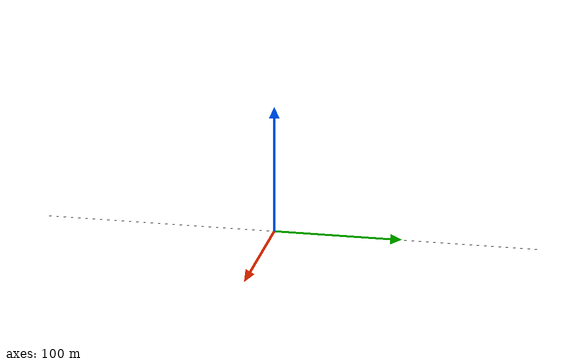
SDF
<?xml version='1.0'?>
<sdf version='1.7'>
  <model name='y_balk'>
    <link name='y_balk::unit_box::link'>
      <inertial>
        <mass>1</mass>
        <inertia>
          <ixx>0.166667</ixx>
          <ixy>0</ixy>
          <ixz>0</ixz>
          <iyy>0.166667</iyy>
          <iyz>0</iyz>
          <izz>0.166667</izz>
        </inertia>
        <pose>0 0 0 0 -0 0</pose>
      </inertial>
      <self_collide>0</self_collide>
      <enable_wind>0</enable_wind>
      <kinematic>0</kinematic>
      <pose>0 0 0 0 -0 0</pose>
      <gravity>1</gravity>
      <visual name='visual'>
        <geometry>
          <box>
            <size>0.1 400 0.1</size>
          </box>
        </geometry>
        <material>
          <script>
            <name>Gazebo/Grey</name>
            <uri>file://media/materials/scripts/gazebo.material</uri>
          </script>
          <shader type='pixel'>
            <normal_map>__default__</normal_map>
          </shader>
          <ambient>0.3 0.3 0.3 1</ambient>
          <diffuse>0.7 0.7 0.7 1</diffuse>
          <specular>0.01 0.01 0.01 1</specular>
          <emissive>0 0 0 1</emissive>
        </material>
        <pose>0 0 0 0 -0 0</pose>
        <transparency>0</transparency>
        <cast_shadows>1</cast_shadows>
      </visual>
    </link>
    <static>0</static>
    <allow_auto_disable>1</allow_auto_disable>
  </model>
</sdf>
